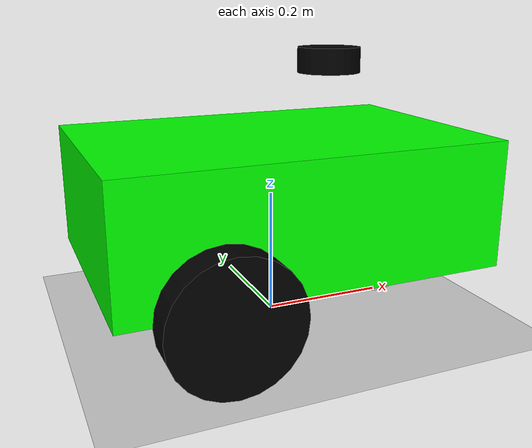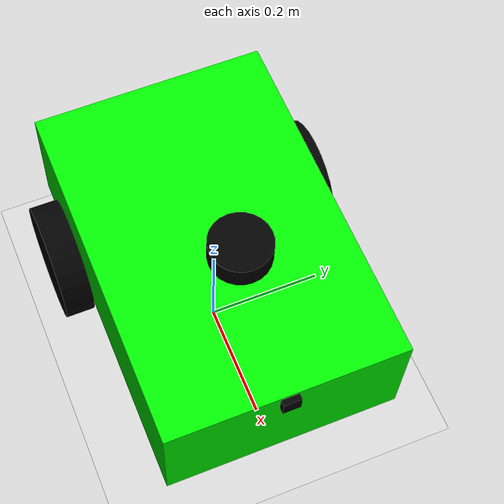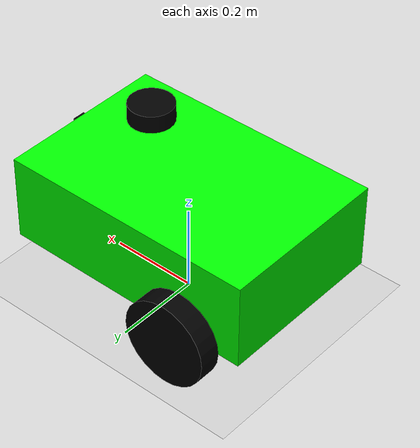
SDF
<sdf version="1.10">
 <world name="my_world">
  <physics name="1ms" type="ignored">
   <max_step_size>0.001</max_step_size>
   <real_time_factor>1</real_time_factor>
   <real_time_update_rate>1000</real_time_update_rate>
  </physics>
  <plugin name="gz::sim::systems::Physics" filename="gz-sim-physics-system"/>
  <plugin name="gz::sim::systems::UserCommands" filename="gz-sim-user-commands-system"/>
  <plugin name="gz::sim::systems::SceneBroadcaster" filename="gz-sim-scene-broadcaster-system"/>
  <plugin name="gz::sim::systems::Contact" filename="gz-sim-contact-system"/>
  <plugin name="gz::sim::systems::Sensors" filename="gz-sim-sensors-system">
   <render_engine>ogre2</render_engine>
  </plugin>
  <gravity>0 0 -9.8000000000000007</gravity>
  <magnetic_field>5.5644999999999998e-06 2.2875799999999999e-05 -4.2388400000000002e-05</magnetic_field>
  <atmosphere type="adiabatic"/>
  <scene>
   <ambient>0.400000006 0.400000006 0.400000006 1</ambient>
   <background>0.699999988 0.699999988 0.699999988 1</background>
   <shadows>true</shadows>
  </scene>
  <model name="ground_plane">
   <static>true</static>
   <link name="link">
    <collision name="collision">
     <geometry><plane><normal>0 0 1</normal><size>100 100</size></plane></geometry>
    </collision>
    <visual name="visual">
     <geometry><plane><normal>0 0 1</normal><size>100 100</size></plane></geometry>
     <material>
      <ambient>0.800000012 0.800000012 0.800000012 1</ambient>
      <diffuse>0.800000012 0.800000012 0.800000012 1</diffuse>
      <specular>0.800000012 0.800000012 0.800000012 1</specular>
     </material>
    </visual>
    <inertial>
     <mass>1</mass>
     <inertia><ixx>1</ixx><ixy>0</ixy><ixz>0</ixz><iyy>1</iyy><iyz>0</iyz><izz>1</izz></inertia>
    </inertial>
   </link>
  </model>
  <model name="my_robot">
   <link name="base_footprint">
    <inertial>
     <pose>0.018181818181818181 0 0.1863636363636364 0 0 0</pose>
     <mass>5.5</mass>
     <inertia>
      <ixx>0.094060606060606011</ixx>
      <ixy>0</ixy>
      <ixz>0.013636363636363639</ixz>
      <iyy>0.19557575757575749</iyy>
      <iyz>0</iyz>
      <izz>0.23534848484848489</izz>
     </inertia>
    </inertial>
    <collision name="base_footprint_fixed_joint_lump__base_link_collision">
     <pose>0 0 0.20000000000000001 0 0 0</pose>
     <geometry><box><size>0.59999999999999998 0.40000000000000002 0.20000000000000001</size></box></geometry>
    </collision>
    <collision name="base_footprint_fixed_joint_lump__caster_wheel_collision_1">
     <pose>0.20000000000000001 0 0.050000000000000017 0 0 0</pose>
     <geometry><sphere><radius>0.050000000000000003</radius></sphere></geometry>
     <surface><friction><ode><mu>0.10000000000000001</mu><mu2>0.10000000000000001</mu2></ode></friction></surface>
    </collision>
    <visual name="base_footprint_fixed_joint_lump__base_link_visual">
     <pose>0 0 0.20000000000000001 0 0 0</pose>
     <geometry><box><size>0.59999999999999998 0.40000000000000002 0.20000000000000001</size></box></geometry>
     <material><diffuse>0 1 0 1</diffuse><ambient>0 1 0 1</ambient></material>
    </visual>
    <visual name="base_footprint_fixed_joint_lump__camera_link_visual_1">
     <pose>0.30499999999999999 0 0.28000000000000003 0 0 0</pose>
     <geometry><box><size>0.01 0.029999999999999999 0.029999999999999999</size></box></geometry>
     <material><diffuse>0 0 0 1</diffuse><ambient>0 0 0 1</ambient></material>
    </visual>
    <visual name="base_footprint_fixed_joint_lump__caster_wheel_visual_2">
     <pose>0.20000000000000001 0 0.050000000000000017 0 0 0</pose>
     <geometry><sphere><radius>0.050000000000000003</radius></sphere></geometry>
     <material><diffuse>1 1 1 1</diffuse><ambient>1 1 1 1</ambient></material>
    </visual>
    <visual name="base_footprint_fixed_joint_lump__laser_frame_visual_3">
     <pose>0.10000000000000001 0 0.40999999999999998 0 0 0</pose>
     <geometry>
      <cylinder><length>0.040000000000000001</length><radius>0.050000000000000003</radius></cylinder>
     </geometry>
     <material><diffuse>0 0 0 1</diffuse><ambient>0 0 0 1</ambient></material>
    </visual>
    <sensor name="camera" type="camera">
     <pose>0.30499999999999999 0 0.28000000000000003 0 0 0</pose>
     <topic>camera/image_raw</topic>
     <update_rate>30</update_rate>
     <enable_metrics>false</enable_metrics>
     <camera name="__default__">
      <horizontal_fov>1.089</horizontal_fov>
      <image><width>640</width><height>480</height><format>RGB_INT8</format><anti_aliasing>4</anti_aliasing></image>
      <camera_info_topic>__default__</camera_info_topic>
      <triggered>false</triggered>
      <clip><near>0.050000000000000003</near><far>8</far></clip>
      <save enabled="false"><path>__default__</path></save>
      <visibility_mask>4294967295</visibility_mask>
      <noise><type>none</type><mean>0</mean><stddev>0</stddev></noise>
      <distortion><k1>0</k1><k2>0</k2><k3>0</k3><p1>0</p1><p2>0</p2><center>0.5 0.5</center></distortion>
      <lens>
       <type>stereographic</type>
       <scale_to_hfov>true</scale_to_hfov>
       <cutoff_angle>1.5707963267948966</cutoff_angle>
       <env_texture_size>256</env_texture_size>
      </lens>
     </camera>
    </sensor>
    <sensor name="lidar" type="gpu_lidar">
     <pose>0.10000000000000001 0 0.40999999999999998 0 0 0</pose>
     <topic>scan</topic>
     <update_rate>10</update_rate>
     <enable_metrics>false</enable_metrics>
     <lidar>
      <scan>
       <horizontal>
        <samples>640</samples>
        <resolution>1</resolution>
        <min_angle>-3.1400000000000001</min_angle>
        <max_angle>3.1400000000000001</max_angle>
       </horizontal>
       <vertical>
        <samples>1</samples>
        <min_angle>0</min_angle>
        <max_angle>0</max_angle>
        <resolution>1</resolution>
       </vertical>
      </scan>
      <range><min>0.10000000000000001</min><max>10</max><resolution>0</resolution></range>
      <noise><type>none</type><mean>0</mean><stddev>0</stddev></noise>
      <visibility_mask>4294967295</visibility_mask>
     </lidar>
    </sensor>
   </link>
   <joint name="left_wheel_joint" type="revolute">
    <pose>0 -2.7755575615628914e-17 0 0 0 0</pose>
    <parent>base_footprint</parent>
    <child>left_wheel</child>
    <axis>
     <xyz>0 0 -1</xyz>
     <limit>
      <lower>-inf</lower>
      <upper>inf</upper>
      <effort>inf</effort>
      <velocity>inf</velocity>
      <stiffness>100000000</stiffness>
      <dissipation>1</dissipation>
     </limit>
     <dynamics>
      <spring_reference>0</spring_reference>
      <spring_stiffness>0</spring_stiffness>
      <damping>0</damping>
      <friction>0</friction>
     </dynamics>
    </axis>
   </joint>
   <link name="left_wheel">
    <pose>-0.14999999999999999 0.22500000000000001 0.099999999999999978 1.5707963267948959 -6.6170105504940894e-11 -1.2149215246872594e-24</pose>
    <inertial>
     <mass>1</mass>
     <inertia>
      <ixx>0.0027083333333333339</ixx>
      <ixy>0</ixy>
      <ixz>0</ixz>
      <iyy>0.0027083333333333339</iyy>
      <iyz>0</iyz>
      <izz>0.005000000000000001</izz>
     </inertia>
    </inertial>
    <collision name="left_wheel_collision">
     <geometry>
      <cylinder><length>0.050000000000000003</length><radius>0.10000000000000001</radius></cylinder>
     </geometry>
    </collision>
    <visual name="left_wheel_visual">
     <geometry>
      <cylinder><length>0.050000000000000003</length><radius>0.10000000000000001</radius></cylinder>
     </geometry>
     <material><diffuse>0 0 0 1</diffuse><ambient>0 0 0 1</ambient></material>
    </visual>
   </link>
   <joint name="right_wheel_joint" type="revolute">
    <pose>0 -1.3877787807814457e-17 0 0 0 0</pose>
    <parent>base_footprint</parent>
    <child>right_wheel</child>
    <axis>
     <xyz>0 0 -1</xyz>
     <limit>
      <lower>-inf</lower>
      <upper>inf</upper>
      <effort>inf</effort>
      <velocity>inf</velocity>
      <stiffness>100000000</stiffness>
      <dissipation>1</dissipation>
     </limit>
     <dynamics>
      <spring_reference>0</spring_reference>
      <spring_stiffness>0</spring_stiffness>
      <damping>0</damping>
      <friction>0</friction>
     </dynamics>
    </axis>
   </joint>
   <link name="right_wheel">
    <pose>-0.14999999999999999 -0.22500000000000001 0.099999999999999978 1.5707963267948959 -6.617010653615535e-11 -5.169878828456423e-26</pose>
    <inertial>
     <mass>1</mass>
     <inertia>
      <ixx>0.0027083333333333339</ixx>
      <ixy>0</ixy>
      <ixz>0</ixz>
      <iyy>0.0027083333333333339</iyy>
      <iyz>0</iyz>
      <izz>0.005000000000000001</izz>
     </inertia>
    </inertial>
    <collision name="right_wheel_collision">
     <geometry>
      <cylinder><length>0.050000000000000003</length><radius>0.10000000000000001</radius></cylinder>
     </geometry>
    </collision>
    <visual name="right_wheel_visual">
     <geometry>
      <cylinder><length>0.050000000000000003</length><radius>0.10000000000000001</radius></cylinder>
     </geometry>
     <material><diffuse>0 0 0 1</diffuse><ambient>0 0 0 1</ambient></material>
    </visual>
   </link>
   <plugin name="gz::sim::systems::DiffDrive" filename="gz-sim-diff-drive-system">
    <left_joint>left_wheel_joint</left_joint>
    <right_joint>right_wheel_joint</right_joint>
    <wheel_separation>0.45</wheel_separation>
    <wheel_radius>0.1</wheel_radius>
    <frame_id>odom</frame_id>
    <child_frame_id>base_footprint</child_frame_id>
   </plugin>
   <plugin name="gz::sim::systems::JointStatePublisher" filename="gz-sim-joint-state-publisher-system">
    <joint_name>left_wheel_joint</joint_name>
    <joint_name>right_wheel_joint</joint_name>
   </plugin>
   <frame name="camera_joint" attached_to="base_link">
    <pose>0.30499999999999999 0 0.080000000000000002 0 0 0</pose>
   </frame>
   <frame name="camera_link" attached_to="camera_joint"/>
   <frame name="caster_joint" attached_to="base_link">
    <pose>0.20000000000000001 0 -0.14999999999999999 0 0 0</pose>
   </frame>
   <frame name="caster_wheel" attached_to="caster_joint"/>
   <frame name="laser_joint" attached_to="base_link">
    <pose>0.10000000000000001 0 0.20999999999999999 0 0 0</pose>
   </frame>
   <frame name="laser_frame" attached_to="laser_joint"/>
   <frame name="base_joint" attached_to="base_footprint"><pose>0 0 0.20000000000000001 0 0 0</pose></frame>
   <frame name="base_link" attached_to="base_joint"/>
   <pose>-6.368674857048665e-12 -1.4776985090743729e-19 -8.5161432893939566e-07 -1.7177619859363468e-18 1.0841070342025106e-08 -3.036147765057225e-19</pose>
   <static>false</static>
  </model>
  <light name="sun" type="directional">
   <pose>0 0 10 0 0 0</pose>
   <intensity>1</intensity>
   <direction>-0.5 0.10000000000000001 -0.90000000000000002</direction>
   <diffuse>0.800000012 0.800000012 0.800000012 1</diffuse>
   <specular>0.200000003 0.200000003 0.200000003 1</specular>
   <attenuation>
    <range>1000</range>
    <linear>0.01</linear>
    <constant>0.90000000000000002</constant>
    <quadratic>0.001</quadratic>
   </attenuation>
   <spot><inner_angle>0</inner_angle><outer_angle>0</outer_angle><falloff>0</falloff></spot>
  </light>
 </world>
</sdf>
